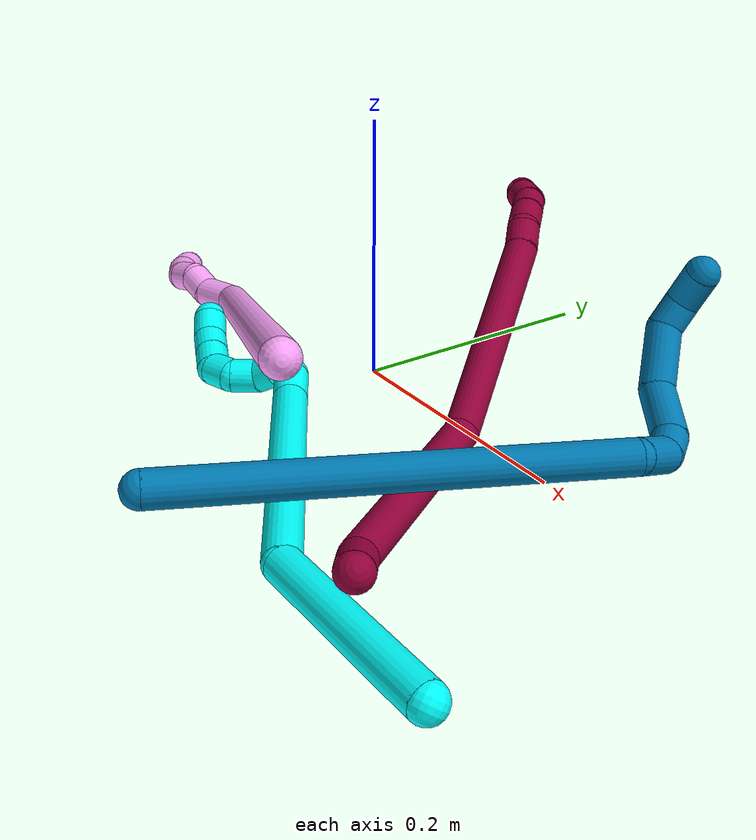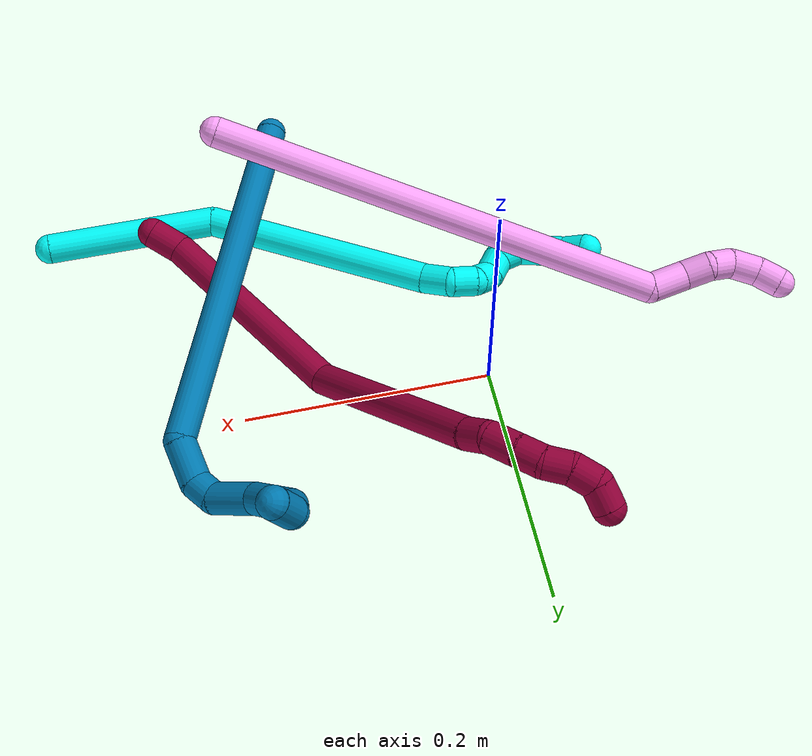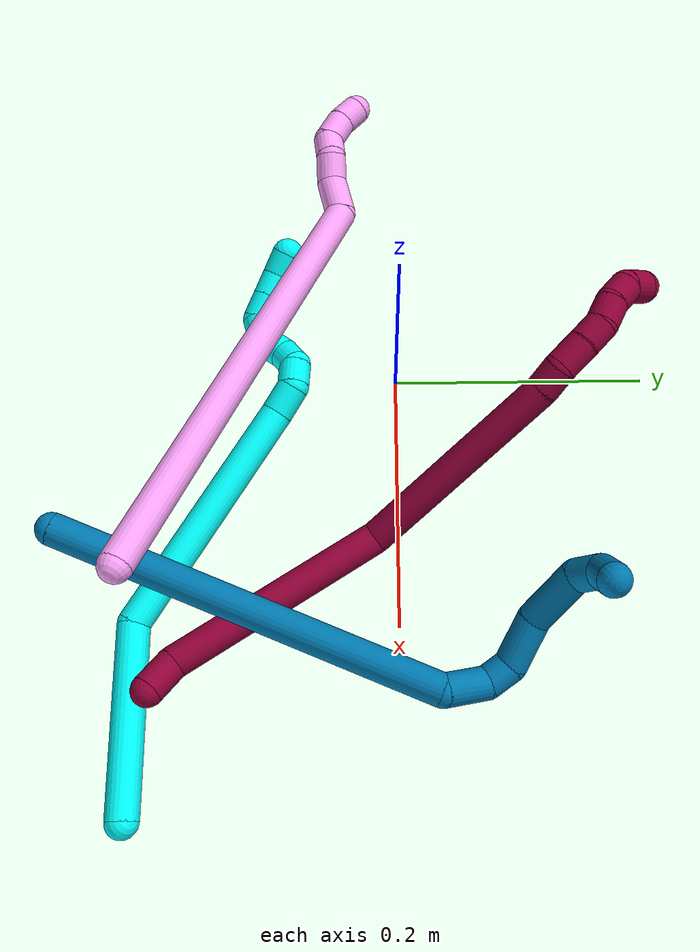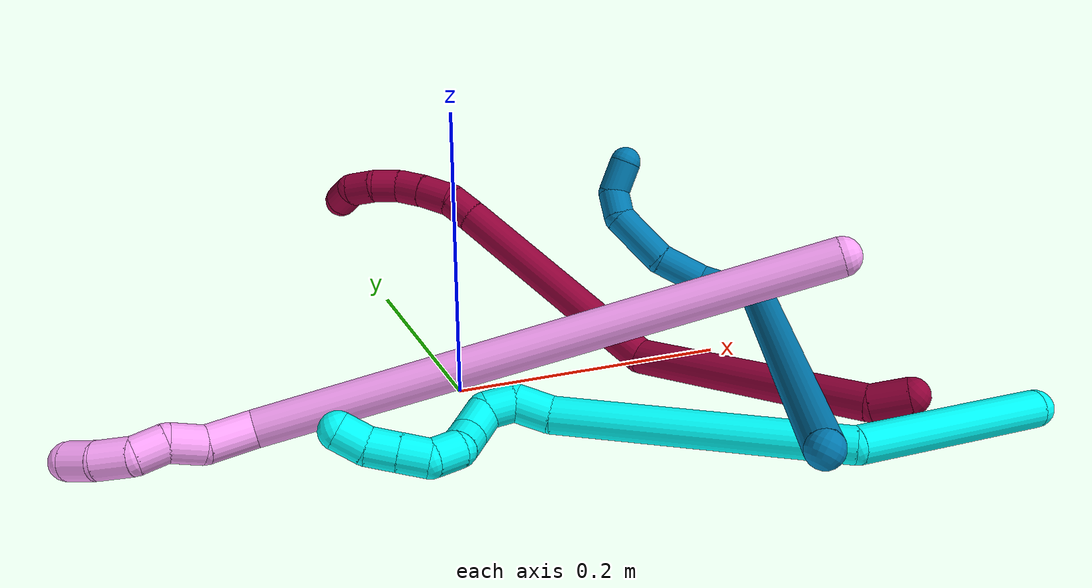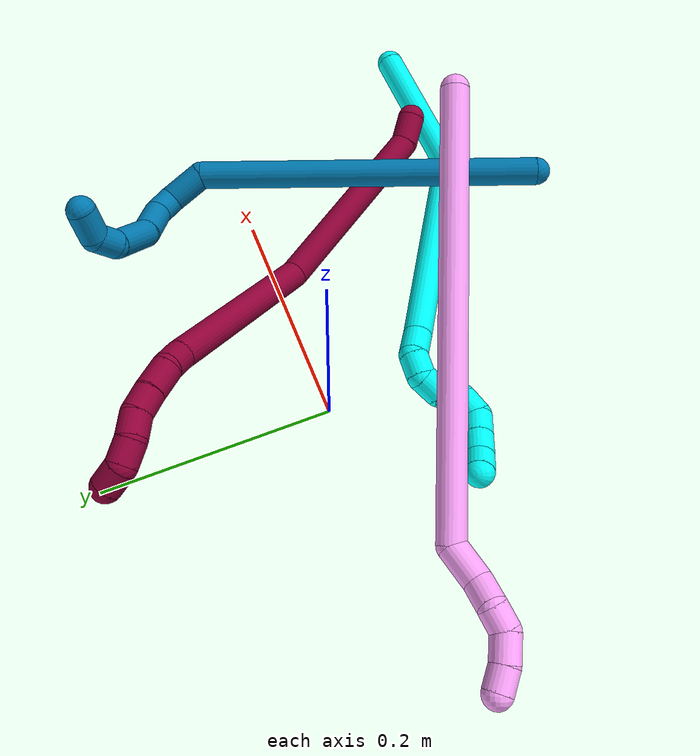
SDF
<sdf version="1.7">
 <world name="default">
  <model name="3">
   <static>0</static>
   <link name="3">
    <collision name="collision-cylinder-e_1_1_4">
     <pose>-0.062421 -0.028847 0.012825 1.15245 -1.10255 -0.760203</pose>
     <geometry><cylinder><radius>0.0125</radius><length>0.139901</length></cylinder></geometry>
     <surface>
      <friction><ode><mu>1.16</mu><mu2>1.16</mu2><slip1>0</slip1><slip2>0</slip2></ode></friction>
      <contact><ode><kp>1e+06</kp><kd>1</kd><max_vel>0</max_vel><min_depth>0.001</min_depth></ode></contact>
     </surface>
    </collision>
    <visual name="visual-cylinder-e_1_1_4">
     <pose>-0.062421 -0.028847 0.012825 1.15245 -1.10255 -0.760203</pose>
     <geometry><cylinder><radius>0.0125</radius><length>0.139901</length></cylinder></geometry>
     <material><ambient>0.003922 1 0.996078 1</ambient></material>
    </visual>
    <collision name="collision-cylinder-e_2_4_5">
     <pose>-0.207688 -0.055006 0.076305 -0.053031 -1.02139 0.029716</pose>
     <geometry><cylinder><radius>0.0125</radius><length>0.194284</length></cylinder></geometry>
     <surface>
      <friction><ode><mu>1.16</mu><mu2>1.16</mu2><slip1>0</slip1><slip2>0</slip2></ode></friction>
      <contact><ode><kp>1e+06</kp><kd>1</kd><max_vel>0</max_vel><min_depth>0.001</min_depth></ode></contact>
     </surface>
    </collision>
    <visual name="visual-cylinder-e_2_4_5">
     <pose>-0.207688 -0.055006 0.076305 -0.053031 -1.02139 0.029716</pose>
     <geometry><cylinder><radius>0.0125</radius><length>0.194284</length></cylinder></geometry>
     <material><ambient>0.003922 1 0.996078 1</ambient></material>
    </visual>
    <collision name="collision-cylinder-e_3_5_6">
     <pose>-0.299492 -0.053366 0.135562 0.121323 -0.801953 -0.051486</pose>
     <geometry><cylinder><radius>0.0125</radius><length>0.024928</length></cylinder></geometry>
     <surface>
      <friction><ode><mu>1.16</mu><mu2>1.16</mu2><slip1>0</slip1><slip2>0</slip2></ode></friction>
      <contact><ode><kp>1e+06</kp><kd>1</kd><max_vel>0</max_vel><min_depth>0.001</min_depth></ode></contact>
     </surface>
    </collision>
    <visual name="visual-cylinder-e_3_5_6">
     <pose>-0.299492 -0.053366 0.135562 0.121323 -0.801953 -0.051486</pose>
     <geometry><cylinder><radius>0.0125</radius><length>0.024928</length></cylinder></geometry>
     <material><ambient>0.003922 1 0.996078 1</ambient></material>
    </visual>
    <collision name="collision-cylinder-e_4_6_7">
     <pose>-0.318025 -0.057337 0.145387 1.17469 -1.25138 -0.89667</pose>
     <geometry><cylinder><radius>0.0125</radius><length>0.020171</length></cylinder></geometry>
     <surface>
      <friction><ode><mu>1.16</mu><mu2>1.16</mu2><slip1>0</slip1><slip2>0</slip2></ode></friction>
      <contact><ode><kp>1e+06</kp><kd>1</kd><max_vel>0</max_vel><min_depth>0.001</min_depth></ode></contact>
     </surface>
    </collision>
    <visual name="visual-cylinder-e_4_6_7">
     <pose>-0.318025 -0.057337 0.145387 1.17469 -1.25138 -0.89667</pose>
     <geometry><cylinder><radius>0.0125</radius><length>0.020171</length></cylinder></geometry>
     <material><ambient>0.003922 1 0.996078 1</ambient></material>
    </visual>
    <collision name="collision-cylinder-e_5_7_8">
     <pose>-0.335168 -0.064282 0.141112 2.50968 -0.837928 -1.87512</pose>
     <geometry><cylinder><radius>0.0125</radius><length>0.020364</length></cylinder></geometry>
     <surface>
      <friction><ode><mu>1.16</mu><mu2>1.16</mu2><slip1>0</slip1><slip2>0</slip2></ode></friction>
      <contact><ode><kp>1e+06</kp><kd>1</kd><max_vel>0</max_vel><min_depth>0.001</min_depth></ode></contact>
     </surface>
    </collision>
    <visual name="visual-cylinder-e_5_7_8">
     <pose>-0.335168 -0.064282 0.141112 2.50968 -0.837928 -1.87512</pose>
     <geometry><cylinder><radius>0.0125</radius><length>0.020364</length></cylinder></geometry>
     <material><ambient>0.003922 1 0.996078 1</ambient></material>
    </visual>
    <collision name="collision-cylinder-e_6_8_9">
     <pose>-0.346434 -0.076746 0.131467 2.02764 -0.374667 -0.590956</pose>
     <geometry><cylinder><radius>0.0125</radius><length>0.020211</length></cylinder></geometry>
     <surface>
      <friction><ode><mu>1.16</mu><mu2>1.16</mu2><slip1>0</slip1><slip2>0</slip2></ode></friction>
      <contact><ode><kp>1e+06</kp><kd>1</kd><max_vel>0</max_vel><min_depth>0.001</min_depth></ode></contact>
     </surface>
    </collision>
    <visual name="visual-cylinder-e_6_8_9">
     <pose>-0.346434 -0.076746 0.131467 2.02764 -0.374667 -0.590956</pose>
     <geometry><cylinder><radius>0.0125</radius><length>0.020211</length></cylinder></geometry>
     <material><ambient>0.003922 1 0.996078 1</ambient></material>
    </visual>
    <collision name="collision-cylinder-e_7_9_10">
     <pose>-0.358281 -0.091019 0.127187 1.59338 -0.949415 -0.967899</pose>
     <geometry><cylinder><radius>0.0125</radius><length>0.020043</length></cylinder></geometry>
     <surface>
      <friction><ode><mu>1.16</mu><mu2>1.16</mu2><slip1>0</slip1><slip2>0</slip2></ode></friction>
      <contact><ode><kp>1e+06</kp><kd>1</kd><max_vel>0</max_vel><min_depth>0.001</min_depth></ode></contact>
     </surface>
    </collision>
    <visual name="visual-cylinder-e_7_9_10">
     <pose>-0.358281 -0.091019 0.127187 1.59338 -0.949415 -0.967899</pose>
     <geometry><cylinder><radius>0.0125</radius><length>0.020043</length></cylinder></geometry>
     <material><ambient>0.003922 1 0.996078 1</ambient></material>
    </visual>
    <collision name="collision-cylinder-e_8_10_11">
     <pose>-0.374458 -0.09866 0.132789 0.305615 -0.92804 -0.153848</pose>
     <geometry><cylinder><radius>0.0125</radius><length>0.02006</length></cylinder></geometry>
     <surface>
      <friction><ode><mu>1.16</mu><mu2>1.16</mu2><slip1>0</slip1><slip2>0</slip2></ode></friction>
      <contact><ode><kp>1e+06</kp><kd>1</kd><max_vel>0</max_vel><min_depth>0.001</min_depth></ode></contact>
     </surface>
    </collision>
    <visual name="visual-cylinder-e_8_10_11">
     <pose>-0.374458 -0.09866 0.132789 0.305615 -0.92804 -0.153848</pose>
     <geometry><cylinder><radius>0.0125</radius><length>0.02006</length></cylinder></geometry>
     <material><ambient>0.003922 1 0.996078 1</ambient></material>
    </visual>
    <collision name="collision-cylinder-e_9_11_12">
     <pose>-0.390473 -0.10235 0.144262 0.316706 -0.923266 -0.158554</pose>
     <geometry><cylinder><radius>0.0125</radius><length>0.020027</length></cylinder></geometry>
     <surface>
      <friction><ode><mu>1.16</mu><mu2>1.16</mu2><slip1>0</slip1><slip2>0</slip2></ode></friction>
      <contact><ode><kp>1e+06</kp><kd>1</kd><max_vel>0</max_vel><min_depth>0.001</min_depth></ode></contact>
     </surface>
    </collision>
    <visual name="visual-cylinder-e_9_11_12">
     <pose>-0.390473 -0.10235 0.144262 0.316706 -0.923266 -0.158554</pose>
     <geometry><cylinder><radius>0.0125</radius><length>0.020027</length></cylinder></geometry>
     <material><ambient>0.003922 1 0.996078 1</ambient></material>
    </visual>
    <collision name="collision-cylinder-e_10_12_2">
     <pose>-0.404326 -0.106809 0.157687 0.323623 -0.626433 -0.10564</pose>
     <geometry><cylinder><radius>0.0125</radius><length>0.02001</length></cylinder></geometry>
     <surface>
      <friction><ode><mu>1.16</mu><mu2>1.16</mu2><slip1>0</slip1><slip2>0</slip2></ode></friction>
      <contact><ode><kp>1e+06</kp><kd>1</kd><max_vel>0</max_vel><min_depth>0.001</min_depth></ode></contact>
     </surface>
    </collision>
    <visual name="visual-cylinder-e_10_12_2">
     <pose>-0.404326 -0.106809 0.157687 0.323623 -0.626433 -0.10564</pose>
     <geometry><cylinder><radius>0.0125</radius><length>0.02001</length></cylinder></geometry>
     <material><ambient>0.003922 1 0.996078 1</ambient></material>
    </visual>
    <collision name="collision-sphere-2">
     <pose>-0.410191 -0.109387 0.165372 0 -0 0</pose>
     <geometry><sphere><radius>0.0125</radius></sphere></geometry>
     <surface>
      <friction><ode><mu>1.16</mu><mu2>1.16</mu2><slip1>0</slip1><slip2>0</slip2></ode></friction>
      <contact><ode><kp>1e+06</kp><kd>1</kd><max_vel>0</max_vel><min_depth>0.001</min_depth></ode></contact>
     </surface>
    </collision>
    <visual name="visual-sphere-2">
     <pose>-0.410191 -0.109387 0.165372 0 -0 0</pose>
     <geometry><sphere><radius>0.0125</radius></sphere></geometry>
     <material><ambient>0.003922 1 0.996078 1</ambient></material>
    </visual>
    <collision name="collision-sphere-12">
     <pose>-0.39846 -0.104232 0.150002 0 -0 0</pose>
     <geometry><sphere><radius>0.0125</radius></sphere></geometry>
     <surface>
      <friction><ode><mu>1.16</mu><mu2>1.16</mu2><slip1>0</slip1><slip2>0</slip2></ode></friction>
      <contact><ode><kp>1e+06</kp><kd>1</kd><max_vel>0</max_vel><min_depth>0.001</min_depth></ode></contact>
     </surface>
    </collision>
    <visual name="visual-sphere-12">
     <pose>-0.39846 -0.104232 0.150002 0 -0 0</pose>
     <geometry><sphere><radius>0.0125</radius></sphere></geometry>
     <material><ambient>0.003922 1 0.996078 1</ambient></material>
    </visual>
    <collision name="collision-sphere-11">
     <pose>-0.382487 -0.100469 0.138522 0 -0 0</pose>
     <geometry><sphere><radius>0.0125</radius></sphere></geometry>
     <surface>
      <friction><ode><mu>1.16</mu><mu2>1.16</mu2><slip1>0</slip1><slip2>0</slip2></ode></friction>
      <contact><ode><kp>1e+06</kp><kd>1</kd><max_vel>0</max_vel><min_depth>0.001</min_depth></ode></contact>
     </surface>
    </collision>
    <visual name="visual-sphere-11">
     <pose>-0.382487 -0.100469 0.138522 0 -0 0</pose>
     <geometry><sphere><radius>0.0125</radius></sphere></geometry>
     <material><ambient>0.003922 1 0.996078 1</ambient></material>
    </visual>
    <collision name="collision-sphere-10">
     <pose>-0.366429 -0.096851 0.127055 0 -0 0</pose>
     <geometry><sphere><radius>0.0125</radius></sphere></geometry>
     <surface>
      <friction><ode><mu>1.16</mu><mu2>1.16</mu2><slip1>0</slip1><slip2>0</slip2></ode></friction>
      <contact><ode><kp>1e+06</kp><kd>1</kd><max_vel>0</max_vel><min_depth>0.001</min_depth></ode></contact>
     </surface>
    </collision>
    <visual name="visual-sphere-10">
     <pose>-0.366429 -0.096851 0.127055 0 -0 0</pose>
     <geometry><sphere><radius>0.0125</radius></sphere></geometry>
     <material><ambient>0.003922 1 0.996078 1</ambient></material>
    </visual>
    <collision name="collision-sphere-9">
     <pose>-0.350133 -0.085186 0.127318 0 -0 0</pose>
     <geometry><sphere><radius>0.0125</radius></sphere></geometry>
     <surface>
      <friction><ode><mu>1.16</mu><mu2>1.16</mu2><slip1>0</slip1><slip2>0</slip2></ode></friction>
      <contact><ode><kp>1e+06</kp><kd>1</kd><max_vel>0</max_vel><min_depth>0.001</min_depth></ode></contact>
     </surface>
    </collision>
    <visual name="visual-sphere-9">
     <pose>-0.350133 -0.085186 0.127318 0 -0 0</pose>
     <geometry><sphere><radius>0.0125</radius></sphere></geometry>
     <material><ambient>0.003922 1 0.996078 1</ambient></material>
    </visual>
    <collision name="collision-sphere-4">
     <pose>-0.124842 -0.057695 0.025651 0 -0 0</pose>
     <geometry><sphere><radius>0.0125</radius></sphere></geometry>
     <surface>
      <friction><ode><mu>1.16</mu><mu2>1.16</mu2><slip1>0</slip1><slip2>0</slip2></ode></friction>
      <contact><ode><kp>1e+06</kp><kd>1</kd><max_vel>0</max_vel><min_depth>0.001</min_depth></ode></contact>
     </surface>
    </collision>
    <visual name="visual-sphere-4">
     <pose>-0.124842 -0.057695 0.025651 0 -0 0</pose>
     <geometry><sphere><radius>0.0125</radius></sphere></geometry>
     <material><ambient>0.003922 1 0.996078 1</ambient></material>
    </visual>
    <collision name="collision-sphere-1">
     <geometry><sphere><radius>0.0125</radius></sphere></geometry>
     <surface>
      <friction><ode><mu>1.16</mu><mu2>1.16</mu2><slip1>0</slip1><slip2>0</slip2></ode></friction>
      <contact><ode><kp>1e+06</kp><kd>1</kd><max_vel>0</max_vel><min_depth>0.001</min_depth></ode></contact>
     </surface>
    </collision>
    <visual name="visual-sphere-1">
     <geometry><sphere><radius>0.0125</radius></sphere></geometry>
     <material><ambient>0.003922 1 0.996078 1</ambient></material>
    </visual>
    <collision name="collision-sphere-8">
     <pose>-0.342736 -0.068306 0.135615 0 -0 0</pose>
     <geometry><sphere><radius>0.0125</radius></sphere></geometry>
     <surface>
      <friction><ode><mu>1.16</mu><mu2>1.16</mu2><slip1>0</slip1><slip2>0</slip2></ode></friction>
      <contact><ode><kp>1e+06</kp><kd>1</kd><max_vel>0</max_vel><min_depth>0.001</min_depth></ode></contact>
     </surface>
    </collision>
    <visual name="visual-sphere-8">
     <pose>-0.342736 -0.068306 0.135615 0 -0 0</pose>
     <geometry><sphere><radius>0.0125</radius></sphere></geometry>
     <material><ambient>0.003922 1 0.996078 1</ambient></material>
    </visual>
    <collision name="collision-sphere-5">
     <pose>-0.290534 -0.052317 0.12696 0 -0 0</pose>
     <geometry><sphere><radius>0.0125</radius></sphere></geometry>
     <surface>
      <friction><ode><mu>1.16</mu><mu2>1.16</mu2><slip1>0</slip1><slip2>0</slip2></ode></friction>
      <contact><ode><kp>1e+06</kp><kd>1</kd><max_vel>0</max_vel><min_depth>0.001</min_depth></ode></contact>
     </surface>
    </collision>
    <visual name="visual-sphere-5">
     <pose>-0.290534 -0.052317 0.12696 0 -0 0</pose>
     <geometry><sphere><radius>0.0125</radius></sphere></geometry>
     <material><ambient>0.003922 1 0.996078 1</ambient></material>
    </visual>
    <collision name="collision-sphere-6">
     <pose>-0.30845 -0.054415 0.144165 0 -0 0</pose>
     <geometry><sphere><radius>0.0125</radius></sphere></geometry>
     <surface>
      <friction><ode><mu>1.16</mu><mu2>1.16</mu2><slip1>0</slip1><slip2>0</slip2></ode></friction>
      <contact><ode><kp>1e+06</kp><kd>1</kd><max_vel>0</max_vel><min_depth>0.001</min_depth></ode></contact>
     </surface>
    </collision>
    <visual name="visual-sphere-6">
     <pose>-0.30845 -0.054415 0.144165 0 -0 0</pose>
     <geometry><sphere><radius>0.0125</radius></sphere></geometry>
     <material><ambient>0.003922 1 0.996078 1</ambient></material>
    </visual>
    <collision name="collision-sphere-7">
     <pose>-0.3276 -0.060258 0.146608 0 -0 0</pose>
     <geometry><sphere><radius>0.0125</radius></sphere></geometry>
     <surface>
      <friction><ode><mu>1.16</mu><mu2>1.16</mu2><slip1>0</slip1><slip2>0</slip2></ode></friction>
      <contact><ode><kp>1e+06</kp><kd>1</kd><max_vel>0</max_vel><min_depth>0.001</min_depth></ode></contact>
     </surface>
    </collision>
    <visual name="visual-sphere-7">
     <pose>-0.3276 -0.060258 0.146608 0 -0 0</pose>
     <geometry><sphere><radius>0.0125</radius></sphere></geometry>
     <material><ambient>0.003922 1 0.996078 1</ambient></material>
    </visual>
    <inertial>
     <pose>-0.21479 -0.05612 0.079439 0 -0 0</pose>
     <mass>0.5</mass>
     <inertia>
      <ixx>0.000307</ixx>
      <ixy>0</ixy>
      <ixz>0</ixz>
      <iyy>0.000753</iyy>
      <iyz>0</iyz>
      <izz>0.000842</izz>
     </inertia>
    </inertial>
   </link>
   <pose>0.336557 -0.197663 0.012433 -0.631217 -0.41342 -0.224075</pose>
  </model>
  <model name="4">
   <static>0</static>
   <link name="4">
    <collision name="collision-cylinder-e_1_1_4">
     <pose>-0.001485 0.001238 -0.189655 -3.13506 -0.007828 1.75114</pose>
     <geometry><cylinder><radius>0.0125</radius><length>0.37933</length></cylinder></geometry>
     <surface>
      <friction><ode><mu>1.16</mu><mu2>1.16</mu2><slip1>0</slip1><slip2>0</slip2></ode></friction>
      <contact><ode><kp>1e+06</kp><kd>1</kd><max_vel>0</max_vel><min_depth>0.001</min_depth></ode></contact>
     </surface>
    </collision>
    <visual name="visual-cylinder-e_1_1_4">
     <pose>-0.001485 0.001238 -0.189655 -3.13506 -0.007828 1.75114</pose>
     <geometry><cylinder><radius>0.0125</radius><length>0.37933</length></cylinder></geometry>
     <material><ambient>1 0.65098 0.996078 1</ambient></material>
    </visual>
    <collision name="collision-cylinder-e_2_4_5">
     <pose>-0.009523 -0.005467 -0.392072 2.58484 -0.411118 -1.26057</pose>
     <geometry><cylinder><radius>0.0125</radius><length>0.032798</length></cylinder></geometry>
     <surface>
      <friction><ode><mu>1.16</mu><mu2>1.16</mu2><slip1>0</slip1><slip2>0</slip2></ode></friction>
      <contact><ode><kp>1e+06</kp><kd>1</kd><max_vel>0</max_vel><min_depth>0.001</min_depth></ode></contact>
     </surface>
    </collision>
    <visual name="visual-cylinder-e_2_4_5">
     <pose>-0.009523 -0.005467 -0.392072 2.58484 -0.411118 -1.26057</pose>
     <geometry><cylinder><radius>0.0125</radius><length>0.032798</length></cylinder></geometry>
     <material><ambient>1 0.65098 0.996078 1</ambient></material>
    </visual>
    <collision name="collision-cylinder-e_3_5_6">
     <pose>-0.023417 -0.015568 -0.413431 2.89573 -0.691695 -2.48094</pose>
     <geometry><cylinder><radius>0.0125</radius><length>0.023016</length></cylinder></geometry>
     <surface>
      <friction><ode><mu>1.16</mu><mu2>1.16</mu2><slip1>0</slip1><slip2>0</slip2></ode></friction>
      <contact><ode><kp>1e+06</kp><kd>1</kd><max_vel>0</max_vel><min_depth>0.001</min_depth></ode></contact>
     </surface>
    </collision>
    <visual name="visual-cylinder-e_3_5_6">
     <pose>-0.023417 -0.015568 -0.413431 2.89573 -0.691695 -2.48094</pose>
     <geometry><cylinder><radius>0.0125</radius><length>0.023016</length></cylinder></geometry>
     <material><ambient>1 0.65098 0.996078 1</ambient></material>
    </visual>
    <collision name="collision-cylinder-e_4_6_7">
     <pose>-0.033166 -0.022092 -0.430801 2.67971 -0.241033 -0.951196</pose>
     <geometry><cylinder><radius>0.0125</radius><length>0.020184</length></cylinder></geometry>
     <surface>
      <friction><ode><mu>1.16</mu><mu2>1.16</mu2><slip1>0</slip1><slip2>0</slip2></ode></friction>
      <contact><ode><kp>1e+06</kp><kd>1</kd><max_vel>0</max_vel><min_depth>0.001</min_depth></ode></contact>
     </surface>
    </collision>
    <visual name="visual-cylinder-e_4_6_7">
     <pose>-0.033166 -0.022092 -0.430801 2.67971 -0.241033 -0.951196</pose>
     <geometry><cylinder><radius>0.0125</radius><length>0.020184</length></cylinder></geometry>
     <material><ambient>1 0.65098 0.996078 1</ambient></material>
    </visual>
    <collision name="collision-cylinder-e_5_7_8">
     <pose>-0.037095 -0.025177 -0.45143 -3.03385 -0.126783 1.7332</pose>
     <geometry><cylinder><radius>0.0125</radius><length>0.024043</length></cylinder></geometry>
     <surface>
      <friction><ode><mu>1.16</mu><mu2>1.16</mu2><slip1>0</slip1><slip2>0</slip2></ode></friction>
      <contact><ode><kp>1e+06</kp><kd>1</kd><max_vel>0</max_vel><min_depth>0.001</min_depth></ode></contact>
     </surface>
    </collision>
    <visual name="visual-cylinder-e_5_7_8">
     <pose>-0.037095 -0.025177 -0.45143 -3.03385 -0.126783 1.7332</pose>
     <geometry><cylinder><radius>0.0125</radius><length>0.024043</length></cylinder></geometry>
     <material><ambient>1 0.65098 0.996078 1</ambient></material>
    </visual>
    <collision name="collision-cylinder-e_6_8_2">
     <pose>-0.038895 -0.020628 -0.473065 -2.81919 -0.027099 0.166275</pose>
     <geometry><cylinder><radius>0.0125</radius><length>0.02063</length></cylinder></geometry>
     <surface>
      <friction><ode><mu>1.16</mu><mu2>1.16</mu2><slip1>0</slip1><slip2>0</slip2></ode></friction>
      <contact><ode><kp>1e+06</kp><kd>1</kd><max_vel>0</max_vel><min_depth>0.001</min_depth></ode></contact>
     </surface>
    </collision>
    <visual name="visual-cylinder-e_6_8_2">
     <pose>-0.038895 -0.020628 -0.473065 -2.81919 -0.027099 0.166275</pose>
     <geometry><cylinder><radius>0.0125</radius><length>0.02063</length></cylinder></geometry>
     <material><ambient>1 0.65098 0.996078 1</ambient></material>
    </visual>
    <collision name="collision-sphere-2">
     <pose>-0.039174 -0.017361 -0.482845 0 -0 0</pose>
     <geometry><sphere><radius>0.0125</radius></sphere></geometry>
     <surface>
      <friction><ode><mu>1.16</mu><mu2>1.16</mu2><slip1>0</slip1><slip2>0</slip2></ode></friction>
      <contact><ode><kp>1e+06</kp><kd>1</kd><max_vel>0</max_vel><min_depth>0.001</min_depth></ode></contact>
     </surface>
    </collision>
    <visual name="visual-sphere-2">
     <pose>-0.039174 -0.017361 -0.482845 0 -0 0</pose>
     <geometry><sphere><radius>0.0125</radius></sphere></geometry>
     <material><ambient>1 0.65098 0.996078 1</ambient></material>
    </visual>
    <collision name="collision-sphere-4">
     <pose>-0.002969 0.002477 -0.37931 0 -0 0</pose>
     <geometry><sphere><radius>0.0125</radius></sphere></geometry>
     <surface>
      <friction><ode><mu>1.16</mu><mu2>1.16</mu2><slip1>0</slip1><slip2>0</slip2></ode></friction>
      <contact><ode><kp>1e+06</kp><kd>1</kd><max_vel>0</max_vel><min_depth>0.001</min_depth></ode></contact>
     </surface>
    </collision>
    <visual name="visual-sphere-4">
     <pose>-0.002969 0.002477 -0.37931 0 -0 0</pose>
     <geometry><sphere><radius>0.0125</radius></sphere></geometry>
     <material><ambient>1 0.65098 0.996078 1</ambient></material>
    </visual>
    <collision name="collision-sphere-1">
     <geometry><sphere><radius>0.0125</radius></sphere></geometry>
     <surface>
      <friction><ode><mu>1.16</mu><mu2>1.16</mu2><slip1>0</slip1><slip2>0</slip2></ode></friction>
      <contact><ode><kp>1e+06</kp><kd>1</kd><max_vel>0</max_vel><min_depth>0.001</min_depth></ode></contact>
     </surface>
    </collision>
    <visual name="visual-sphere-1">
     <geometry><sphere><radius>0.0125</radius></sphere></geometry>
     <material><ambient>1 0.65098 0.996078 1</ambient></material>
    </visual>
    <collision name="collision-sphere-8">
     <pose>-0.038615 -0.023895 -0.463285 0 -0 0</pose>
     <geometry><sphere><radius>0.0125</radius></sphere></geometry>
     <surface>
      <friction><ode><mu>1.16</mu><mu2>1.16</mu2><slip1>0</slip1><slip2>0</slip2></ode></friction>
      <contact><ode><kp>1e+06</kp><kd>1</kd><max_vel>0</max_vel><min_depth>0.001</min_depth></ode></contact>
     </surface>
    </collision>
    <visual name="visual-sphere-8">
     <pose>-0.038615 -0.023895 -0.463285 0 -0 0</pose>
     <geometry><sphere><radius>0.0125</radius></sphere></geometry>
     <material><ambient>1 0.65098 0.996078 1</ambient></material>
    </visual>
    <collision name="collision-sphere-5">
     <pose>-0.016077 -0.013411 -0.404834 0 -0 0</pose>
     <geometry><sphere><radius>0.0125</radius></sphere></geometry>
     <surface>
      <friction><ode><mu>1.16</mu><mu2>1.16</mu2><slip1>0</slip1><slip2>0</slip2></ode></friction>
      <contact><ode><kp>1e+06</kp><kd>1</kd><max_vel>0</max_vel><min_depth>0.001</min_depth></ode></contact>
     </surface>
    </collision>
    <visual name="visual-sphere-5">
     <pose>-0.016077 -0.013411 -0.404834 0 -0 0</pose>
     <geometry><sphere><radius>0.0125</radius></sphere></geometry>
     <material><ambient>1 0.65098 0.996078 1</ambient></material>
    </visual>
    <collision name="collision-sphere-6">
     <pose>-0.030757 -0.017725 -0.422027 0 -0 0</pose>
     <geometry><sphere><radius>0.0125</radius></sphere></geometry>
     <surface>
      <friction><ode><mu>1.16</mu><mu2>1.16</mu2><slip1>0</slip1><slip2>0</slip2></ode></friction>
      <contact><ode><kp>1e+06</kp><kd>1</kd><max_vel>0</max_vel><min_depth>0.001</min_depth></ode></contact>
     </surface>
    </collision>
    <visual name="visual-sphere-6">
     <pose>-0.030757 -0.017725 -0.422027 0 -0 0</pose>
     <geometry><sphere><radius>0.0125</radius></sphere></geometry>
     <material><ambient>1 0.65098 0.996078 1</ambient></material>
    </visual>
    <collision name="collision-sphere-7">
     <pose>-0.035575 -0.02646 -0.439574 0 -0 0</pose>
     <geometry><sphere><radius>0.0125</radius></sphere></geometry>
     <surface>
      <friction><ode><mu>1.16</mu><mu2>1.16</mu2><slip1>0</slip1><slip2>0</slip2></ode></friction>
      <contact><ode><kp>1e+06</kp><kd>1</kd><max_vel>0</max_vel><min_depth>0.001</min_depth></ode></contact>
     </surface>
    </collision>
    <visual name="visual-sphere-7">
     <pose>-0.035575 -0.02646 -0.439574 0 -0 0</pose>
     <geometry><sphere><radius>0.0125</radius></sphere></geometry>
     <material><ambient>1 0.65098 0.996078 1</ambient></material>
    </visual>
    <inertial>
     <pose>-0.007556 -0.003089 -0.247249 0 -0 0</pose>
     <mass>0.5</mass>
     <inertia>
      <ixx>0.003666</ixx>
      <ixy>0</ixy>
      <ixz>0</ixz>
      <iyy>0.005303</iyy>
      <iyz>0</iyz>
      <izz>-2.6e-05</izz>
     </inertia>
    </inertial>
   </link>
   <pose>0.182952 -0.186675 0.13498 0.811864 1.09427 0.467867</pose>
  </model>
  <model name="8">
   <static>0</static>
   <link name="8">
    <collision name="collision-cylinder-e_1_1_4">
     <pose>-0.005458 0.005488 0.011184 -0.456166 -0.412943 0.097162</pose>
     <geometry><cylinder><radius>0.0125</radius><length>0.027203</length></cylinder></geometry>
     <surface>
      <friction><ode><mu>1.16</mu><mu2>1.16</mu2><slip1>0</slip1><slip2>0</slip2></ode></friction>
      <contact><ode><kp>1e+06</kp><kd>1</kd><max_vel>0</max_vel><min_depth>0.001</min_depth></ode></contact>
     </surface>
    </collision>
    <visual name="visual-cylinder-e_1_1_4">
     <pose>-0.005458 0.005488 0.011184 -0.456166 -0.412943 0.097162</pose>
     <geometry><cylinder><radius>0.0125</radius><length>0.027203</length></cylinder></geometry>
     <material><ambient>0.584314 0 0.227451 1</ambient></material>
    </visual>
    <collision name="collision-cylinder-e_2_4_5">
     <pose>-0.072952 0.052062 0.069636 -0.715548 -0.780649 0.305248</pose>
     <geometry><cylinder><radius>0.0125</radius><length>0.176302</length></cylinder></geometry>
     <surface>
      <friction><ode><mu>1.16</mu><mu2>1.16</mu2><slip1>0</slip1><slip2>0</slip2></ode></friction>
      <contact><ode><kp>1e+06</kp><kd>1</kd><max_vel>0</max_vel><min_depth>0.001</min_depth></ode></contact>
     </surface>
    </collision>
    <visual name="visual-cylinder-e_2_4_5">
     <pose>-0.072952 0.052062 0.069636 -0.715548 -0.780649 0.305248</pose>
     <geometry><cylinder><radius>0.0125</radius><length>0.176302</length></cylinder></geometry>
     <material><ambient>0.584314 0 0.227451 1</ambient></material>
    </visual>
    <collision name="collision-cylinder-e_3_5_6">
     <pose>-0.185462 0.161341 0.126377 -1.43276 -0.632606 0.555216</pose>
     <geometry><cylinder><radius>0.0125</radius><length>0.170738</length></cylinder></geometry>
     <surface>
      <friction><ode><mu>1.16</mu><mu2>1.16</mu2><slip1>0</slip1><slip2>0</slip2></ode></friction>
      <contact><ode><kp>1e+06</kp><kd>1</kd><max_vel>0</max_vel><min_depth>0.001</min_depth></ode></contact>
     </surface>
    </collision>
    <visual name="visual-cylinder-e_3_5_6">
     <pose>-0.185462 0.161341 0.126377 -1.43276 -0.632606 0.555216</pose>
     <geometry><cylinder><radius>0.0125</radius><length>0.170738</length></cylinder></geometry>
     <material><ambient>0.584314 0 0.227451 1</ambient></material>
    </visual>
    <collision name="collision-cylinder-e_4_6_7">
     <pose>-0.240652 0.238705 0.137118 -1.43349 -0.471212 0.412401</pose>
     <geometry><cylinder><radius>0.0125</radius><length>0.020778</length></cylinder></geometry>
     <surface>
      <friction><ode><mu>1.16</mu><mu2>1.16</mu2><slip1>0</slip1><slip2>0</slip2></ode></friction>
      <contact><ode><kp>1e+06</kp><kd>1</kd><max_vel>0</max_vel><min_depth>0.001</min_depth></ode></contact>
     </surface>
    </collision>
    <visual name="visual-cylinder-e_4_6_7">
     <pose>-0.240652 0.238705 0.137118 -1.43349 -0.471212 0.412401</pose>
     <geometry><cylinder><radius>0.0125</radius><length>0.020778</length></cylinder></geometry>
     <material><ambient>0.584314 0 0.227451 1</ambient></material>
    </visual>
    <collision name="collision-cylinder-e_5_7_8">
     <pose>-0.252069 0.256565 0.143882 -1.00683 -0.577481 0.324314</pose>
     <geometry><cylinder><radius>0.0125</radius><length>0.024546</length></cylinder></geometry>
     <surface>
      <friction><ode><mu>1.16</mu><mu2>1.16</mu2><slip1>0</slip1><slip2>0</slip2></ode></friction>
      <contact><ode><kp>1e+06</kp><kd>1</kd><max_vel>0</max_vel><min_depth>0.001</min_depth></ode></contact>
     </surface>
    </collision>
    <visual name="visual-cylinder-e_5_7_8">
     <pose>-0.252069 0.256565 0.143882 -1.00683 -0.577481 0.324314</pose>
     <geometry><cylinder><radius>0.0125</radius><length>0.024546</length></cylinder></geometry>
     <material><ambient>0.584314 0 0.227451 1</ambient></material>
    </visual>
    <collision name="collision-cylinder-e_6_8_9">
     <pose>-0.264031 0.27206 0.154738 -0.903552 -0.54588 0.270014</pose>
     <geometry><cylinder><radius>0.0125</radius><length>0.02027</length></cylinder></geometry>
     <surface>
      <friction><ode><mu>1.16</mu><mu2>1.16</mu2><slip1>0</slip1><slip2>0</slip2></ode></friction>
      <contact><ode><kp>1e+06</kp><kd>1</kd><max_vel>0</max_vel><min_depth>0.001</min_depth></ode></contact>
     </surface>
    </collision>
    <visual name="visual-cylinder-e_6_8_9">
     <pose>-0.264031 0.27206 0.154738 -0.903552 -0.54588 0.270014</pose>
     <geometry><cylinder><radius>0.0125</radius><length>0.02027</length></cylinder></geometry>
     <material><ambient>0.584314 0 0.227451 1</ambient></material>
    </visual>
    <collision name="collision-cylinder-e_7_9_10">
     <pose>-0.271747 0.285728 0.167008 -0.782161 -0.246889 0.102228</pose>
     <geometry><cylinder><radius>0.0125</radius><length>0.020088</length></cylinder></geometry>
     <surface>
      <friction><ode><mu>1.16</mu><mu2>1.16</mu2><slip1>0</slip1><slip2>0</slip2></ode></friction>
      <contact><ode><kp>1e+06</kp><kd>1</kd><max_vel>0</max_vel><min_depth>0.001</min_depth></ode></contact>
     </surface>
    </collision>
    <visual name="visual-cylinder-e_7_9_10">
     <pose>-0.271747 0.285728 0.167008 -0.782161 -0.246889 0.102228</pose>
     <geometry><cylinder><radius>0.0125</radius><length>0.020088</length></cylinder></geometry>
     <material><ambient>0.584314 0 0.227451 1</ambient></material>
    </visual>
    <collision name="collision-cylinder-e_8_10_11">
     <pose>-0.278654 0.297173 0.181638 -0.535386 -0.460428 0.128387</pose>
     <geometry><cylinder><radius>0.0125</radius><length>0.020043</length></cylinder></geometry>
     <surface>
      <friction><ode><mu>1.16</mu><mu2>1.16</mu2><slip1>0</slip1><slip2>0</slip2></ode></friction>
      <contact><ode><kp>1e+06</kp><kd>1</kd><max_vel>0</max_vel><min_depth>0.001</min_depth></ode></contact>
     </surface>
    </collision>
    <visual name="visual-cylinder-e_8_10_11">
     <pose>-0.278654 0.297173 0.181638 -0.535386 -0.460428 0.128387</pose>
     <geometry><cylinder><radius>0.0125</radius><length>0.020043</length></cylinder></geometry>
     <material><ambient>0.584314 0 0.227451 1</ambient></material>
    </visual>
    <collision name="collision-cylinder-e_9_11_2">
     <pose>-0.289773 0.300749 0.196769 0.134706 -0.728097 -0.051394</pose>
     <geometry><cylinder><radius>0.0125</radius><length>0.020032</length></cylinder></geometry>
     <surface>
      <friction><ode><mu>1.16</mu><mu2>1.16</mu2><slip1>0</slip1><slip2>0</slip2></ode></friction>
      <contact><ode><kp>1e+06</kp><kd>1</kd><max_vel>0</max_vel><min_depth>0.001</min_depth></ode></contact>
     </surface>
    </collision>
    <visual name="visual-cylinder-e_9_11_2">
     <pose>-0.289773 0.300749 0.196769 0.134706 -0.728097 -0.051394</pose>
     <geometry><cylinder><radius>0.0125</radius><length>0.020032</length></cylinder></geometry>
     <material><ambient>0.584314 0 0.227451 1</ambient></material>
    </visual>
    <collision name="collision-sphere-2">
     <pose>-0.296438 0.299745 0.204178 0 -0 0</pose>
     <geometry><sphere><radius>0.0125</radius></sphere></geometry>
     <surface>
      <friction><ode><mu>1.16</mu><mu2>1.16</mu2><slip1>0</slip1><slip2>0</slip2></ode></friction>
      <contact><ode><kp>1e+06</kp><kd>1</kd><max_vel>0</max_vel><min_depth>0.001</min_depth></ode></contact>
     </surface>
    </collision>
    <visual name="visual-sphere-2">
     <pose>-0.296438 0.299745 0.204178 0 -0 0</pose>
     <geometry><sphere><radius>0.0125</radius></sphere></geometry>
     <material><ambient>0.584314 0 0.227451 1</ambient></material>
    </visual>
    <collision name="collision-sphere-11">
     <pose>-0.283107 0.301753 0.18936 0 -0 0</pose>
     <geometry><sphere><radius>0.0125</radius></sphere></geometry>
     <surface>
      <friction><ode><mu>1.16</mu><mu2>1.16</mu2><slip1>0</slip1><slip2>0</slip2></ode></friction>
      <contact><ode><kp>1e+06</kp><kd>1</kd><max_vel>0</max_vel><min_depth>0.001</min_depth></ode></contact>
     </surface>
    </collision>
    <visual name="visual-sphere-11">
     <pose>-0.283107 0.301753 0.18936 0 -0 0</pose>
     <geometry><sphere><radius>0.0125</radius></sphere></geometry>
     <material><ambient>0.584314 0 0.227451 1</ambient></material>
    </visual>
    <collision name="collision-sphere-10">
     <pose>-0.274201 0.292593 0.173917 0 -0 0</pose>
     <geometry><sphere><radius>0.0125</radius></sphere></geometry>
     <surface>
      <friction><ode><mu>1.16</mu><mu2>1.16</mu2><slip1>0</slip1><slip2>0</slip2></ode></friction>
      <contact><ode><kp>1e+06</kp><kd>1</kd><max_vel>0</max_vel><min_depth>0.001</min_depth></ode></contact>
     </surface>
    </collision>
    <visual name="visual-sphere-10">
     <pose>-0.274201 0.292593 0.173917 0 -0 0</pose>
     <geometry><sphere><radius>0.0125</radius></sphere></geometry>
     <material><ambient>0.584314 0 0.227451 1</ambient></material>
    </visual>
    <collision name="collision-sphere-9">
     <pose>-0.269292 0.278864 0.160099 0 -0 0</pose>
     <geometry><sphere><radius>0.0125</radius></sphere></geometry>
     <surface>
      <friction><ode><mu>1.16</mu><mu2>1.16</mu2><slip1>0</slip1><slip2>0</slip2></ode></friction>
      <contact><ode><kp>1e+06</kp><kd>1</kd><max_vel>0</max_vel><min_depth>0.001</min_depth></ode></contact>
     </surface>
    </collision>
    <visual name="visual-sphere-9">
     <pose>-0.269292 0.278864 0.160099 0 -0 0</pose>
     <geometry><sphere><radius>0.0125</radius></sphere></geometry>
     <material><ambient>0.584314 0 0.227451 1</ambient></material>
    </visual>
    <collision name="collision-sphere-4">
     <pose>-0.010917 0.010976 0.022369 0 -0 0</pose>
     <geometry><sphere><radius>0.0125</radius></sphere></geometry>
     <surface>
      <friction><ode><mu>1.16</mu><mu2>1.16</mu2><slip1>0</slip1><slip2>0</slip2></ode></friction>
      <contact><ode><kp>1e+06</kp><kd>1</kd><max_vel>0</max_vel><min_depth>0.001</min_depth></ode></contact>
     </surface>
    </collision>
    <visual name="visual-sphere-4">
     <pose>-0.010917 0.010976 0.022369 0 -0 0</pose>
     <geometry><sphere><radius>0.0125</radius></sphere></geometry>
     <material><ambient>0.584314 0 0.227451 1</ambient></material>
    </visual>
    <collision name="collision-sphere-1">
     <geometry><sphere><radius>0.0125</radius></sphere></geometry>
     <surface>
      <friction><ode><mu>1.16</mu><mu2>1.16</mu2><slip1>0</slip1><slip2>0</slip2></ode></friction>
      <contact><ode><kp>1e+06</kp><kd>1</kd><max_vel>0</max_vel><min_depth>0.001</min_depth></ode></contact>
     </surface>
    </collision>
    <visual name="visual-sphere-1">
     <geometry><sphere><radius>0.0125</radius></sphere></geometry>
     <material><ambient>0.584314 0 0.227451 1</ambient></material>
    </visual>
    <collision name="collision-sphere-8">
     <pose>-0.258769 0.265256 0.149378 0 -0 0</pose>
     <geometry><sphere><radius>0.0125</radius></sphere></geometry>
     <surface>
      <friction><ode><mu>1.16</mu><mu2>1.16</mu2><slip1>0</slip1><slip2>0</slip2></ode></friction>
      <contact><ode><kp>1e+06</kp><kd>1</kd><max_vel>0</max_vel><min_depth>0.001</min_depth></ode></contact>
     </surface>
    </collision>
    <visual name="visual-sphere-8">
     <pose>-0.258769 0.265256 0.149378 0 -0 0</pose>
     <geometry><sphere><radius>0.0125</radius></sphere></geometry>
     <material><ambient>0.584314 0 0.227451 1</ambient></material>
    </visual>
    <collision name="collision-sphere-5">
     <pose>-0.134988 0.093147 0.116903 0 -0 0</pose>
     <geometry><sphere><radius>0.0125</radius></sphere></geometry>
     <surface>
      <friction><ode><mu>1.16</mu><mu2>1.16</mu2><slip1>0</slip1><slip2>0</slip2></ode></friction>
      <contact><ode><kp>1e+06</kp><kd>1</kd><max_vel>0</max_vel><min_depth>0.001</min_depth></ode></contact>
     </surface>
    </collision>
    <visual name="visual-sphere-5">
     <pose>-0.134988 0.093147 0.116903 0 -0 0</pose>
     <geometry><sphere><radius>0.0125</radius></sphere></geometry>
     <material><ambient>0.584314 0 0.227451 1</ambient></material>
    </visual>
    <collision name="collision-sphere-6">
     <pose>-0.235936 0.229535 0.135851 0 -0 0</pose>
     <geometry><sphere><radius>0.0125</radius></sphere></geometry>
     <surface>
      <friction><ode><mu>1.16</mu><mu2>1.16</mu2><slip1>0</slip1><slip2>0</slip2></ode></friction>
      <contact><ode><kp>1e+06</kp><kd>1</kd><max_vel>0</max_vel><min_depth>0.001</min_depth></ode></contact>
     </surface>
    </collision>
    <visual name="visual-sphere-6">
     <pose>-0.235936 0.229535 0.135851 0 -0 0</pose>
     <geometry><sphere><radius>0.0125</radius></sphere></geometry>
     <material><ambient>0.584314 0 0.227451 1</ambient></material>
    </visual>
    <collision name="collision-sphere-7">
     <pose>-0.245369 0.247875 0.138385 0 -0 0</pose>
     <geometry><sphere><radius>0.0125</radius></sphere></geometry>
     <surface>
      <friction><ode><mu>1.16</mu><mu2>1.16</mu2><slip1>0</slip1><slip2>0</slip2></ode></friction>
      <contact><ode><kp>1e+06</kp><kd>1</kd><max_vel>0</max_vel><min_depth>0.001</min_depth></ode></contact>
     </surface>
    </collision>
    <visual name="visual-sphere-7">
     <pose>-0.245369 0.247875 0.138385 0 -0 0</pose>
     <geometry><sphere><radius>0.0125</radius></sphere></geometry>
     <material><ambient>0.584314 0 0.227451 1</ambient></material>
    </visual>
    <inertial>
     <pose>-0.156127 0.142735 0.109226 0 -0 0</pose>
     <mass>0.5</mass>
     <inertia><ixx>0.00087</ixx><ixy>0</ixy><ixz>0</ixz><iyy>0.00089</iyy><iyz>0</iyz><izz>3.8e-05</izz></inertia>
    </inertial>
   </link>
   <pose>0.248175 -0.18157 0.030353 2.37104 0.008391 -1.7894</pose>
  </model>
  <model name="9">
   <static>0</static>
   <link name="9">
    <collision name="collision-cylinder-e_1_1_4">
     <pose>0.087411 0.112492 0.058898 -1.08847 0.602893 -0.371989</pose>
     <geometry><cylinder><radius>0.0125</radius><length>0.308312</length></cylinder></geometry>
     <surface>
      <friction><ode><mu>1.16</mu><mu2>1.16</mu2><slip1>0</slip1><slip2>0</slip2></ode></friction>
      <contact><ode><kp>1e+06</kp><kd>1</kd><max_vel>0</max_vel><min_depth>0.001</min_depth></ode></contact>
     </surface>
    </collision>
    <visual name="visual-cylinder-e_1_1_4">
     <pose>0.087411 0.112492 0.058898 -1.08847 0.602893 -0.371989</pose>
     <geometry><cylinder><radius>0.0125</radius><length>0.308312</length></cylinder></geometry>
     <material><ambient>0 0.490196 0.709804 1</ambient></material>
    </visual>
    <collision name="collision-cylinder-e_2_4_5">
     <pose>0.180581 0.241214 0.114313 -1.78218 0.334017 -0.411288</pose>
     <geometry><cylinder><radius>0.0125</radius><length>0.035141</length></cylinder></geometry>
     <surface>
      <friction><ode><mu>1.16</mu><mu2>1.16</mu2><slip1>0</slip1><slip2>0</slip2></ode></friction>
      <contact><ode><kp>1e+06</kp><kd>1</kd><max_vel>0</max_vel><min_depth>0.001</min_depth></ode></contact>
     </surface>
    </collision>
    <visual name="visual-cylinder-e_2_4_5">
     <pose>0.180581 0.241214 0.114313 -1.78218 0.334017 -0.411288</pose>
     <geometry><cylinder><radius>0.0125</radius><length>0.035141</length></cylinder></geometry>
     <material><ambient>0 0.490196 0.709804 1</ambient></material>
    </visual>
    <collision name="collision-cylinder-e_3_5_6">
     <pose>0.183706 0.267607 0.110102 -1.64238 -0.253074 0.271647</pose>
     <geometry><cylinder><radius>0.0125</radius><length>0.02105</length></cylinder></geometry>
     <surface>
      <friction><ode><mu>1.16</mu><mu2>1.16</mu2><slip1>0</slip1><slip2>0</slip2></ode></friction>
      <contact><ode><kp>1e+06</kp><kd>1</kd><max_vel>0</max_vel><min_depth>0.001</min_depth></ode></contact>
     </surface>
    </collision>
    <visual name="visual-cylinder-e_3_5_6">
     <pose>0.183706 0.267607 0.110102 -1.64238 -0.253074 0.271647</pose>
     <geometry><cylinder><radius>0.0125</radius><length>0.02105</length></cylinder></geometry>
     <material><ambient>0 0.490196 0.709804 1</ambient></material>
    </visual>
    <collision name="collision-cylinder-e_4_6_7">
     <pose>0.166867 0.290951 0.109183 -1.58523 -0.822717 0.833352</pose>
     <geometry><cylinder><radius>0.0125</radius><length>0.038756</length></cylinder></geometry>
     <surface>
      <friction><ode><mu>1.16</mu><mu2>1.16</mu2><slip1>0</slip1><slip2>0</slip2></ode></friction>
      <contact><ode><kp>1e+06</kp><kd>1</kd><max_vel>0</max_vel><min_depth>0.001</min_depth></ode></contact>
     </surface>
    </collision>
    <visual name="visual-cylinder-e_4_6_7">
     <pose>0.166867 0.290951 0.109183 -1.58523 -0.822717 0.833352</pose>
     <geometry><cylinder><radius>0.0125</radius><length>0.038756</length></cylinder></geometry>
     <material><ambient>0 0.490196 0.709804 1</ambient></material>
    </visual>
    <collision name="collision-cylinder-e_5_7_8">
     <pose>0.138406 0.321355 0.116721 -1.14902 -0.646826 0.427334</pose>
     <geometry><cylinder><radius>0.0125</radius><length>0.047313</length></cylinder></geometry>
     <surface>
      <friction><ode><mu>1.16</mu><mu2>1.16</mu2><slip1>0</slip1><slip2>0</slip2></ode></friction>
      <contact><ode><kp>1e+06</kp><kd>1</kd><max_vel>0</max_vel><min_depth>0.001</min_depth></ode></contact>
     </surface>
    </collision>
    <visual name="visual-cylinder-e_5_7_8">
     <pose>0.138406 0.321355 0.116721 -1.14902 -0.646826 0.427334</pose>
     <geometry><cylinder><radius>0.0125</radius><length>0.047313</length></cylinder></geometry>
     <material><ambient>0 0.490196 0.709804 1</ambient></material>
    </visual>
    <collision name="collision-cylinder-e_6_8_9">
     <pose>0.121306 0.345303 0.133026 -0.664928 -0.255254 0.088558</pose>
     <geometry><cylinder><radius>0.0125</radius><length>0.022527</length></cylinder></geometry>
     <surface>
      <friction><ode><mu>1.16</mu><mu2>1.16</mu2><slip1>0</slip1><slip2>0</slip2></ode></friction>
      <contact><ode><kp>1e+06</kp><kd>1</kd><max_vel>0</max_vel><min_depth>0.001</min_depth></ode></contact>
     </surface>
    </collision>
    <visual name="visual-cylinder-e_6_8_9">
     <pose>0.121306 0.345303 0.133026 -0.664928 -0.255254 0.088558</pose>
     <geometry><cylinder><radius>0.0125</radius><length>0.022527</length></cylinder></geometry>
     <material><ambient>0 0.490196 0.709804 1</ambient></material>
    </visual>
    <collision name="collision-cylinder-e_7_9_2">
     <pose>0.115748 0.351533 0.154767 0.037546 -0.203148 -0.003827</pose>
     <geometry><cylinder><radius>0.0125</radius><length>0.026901</length></cylinder></geometry>
     <surface>
      <friction><ode><mu>1.16</mu><mu2>1.16</mu2><slip1>0</slip1><slip2>0</slip2></ode></friction>
      <contact><ode><kp>1e+06</kp><kd>1</kd><max_vel>0</max_vel><min_depth>0.001</min_depth></ode></contact>
     </surface>
    </collision>
    <visual name="visual-cylinder-e_7_9_2">
     <pose>0.115748 0.351533 0.154767 0.037546 -0.203148 -0.003827</pose>
     <geometry><cylinder><radius>0.0125</radius><length>0.026901</length></cylinder></geometry>
     <material><ambient>0 0.490196 0.709804 1</ambient></material>
    </visual>
    <collision name="collision-sphere-2">
     <pose>0.113034 0.351038 0.167932 0 -0 0</pose>
     <geometry><sphere><radius>0.0125</radius></sphere></geometry>
     <surface>
      <friction><ode><mu>1.16</mu><mu2>1.16</mu2><slip1>0</slip1><slip2>0</slip2></ode></friction>
      <contact><ode><kp>1e+06</kp><kd>1</kd><max_vel>0</max_vel><min_depth>0.001</min_depth></ode></contact>
     </surface>
    </collision>
    <visual name="visual-sphere-2">
     <pose>0.113034 0.351038 0.167932 0 -0 0</pose>
     <geometry><sphere><radius>0.0125</radius></sphere></geometry>
     <material><ambient>0 0.490196 0.709804 1</ambient></material>
    </visual>
    <collision name="collision-sphere-9">
     <pose>0.118462 0.352027 0.141603 0 -0 0</pose>
     <geometry><sphere><radius>0.0125</radius></sphere></geometry>
     <surface>
      <friction><ode><mu>1.16</mu><mu2>1.16</mu2><slip1>0</slip1><slip2>0</slip2></ode></friction>
      <contact><ode><kp>1e+06</kp><kd>1</kd><max_vel>0</max_vel><min_depth>0.001</min_depth></ode></contact>
     </surface>
    </collision>
    <visual name="visual-sphere-9">
     <pose>0.118462 0.352027 0.141603 0 -0 0</pose>
     <geometry><sphere><radius>0.0125</radius></sphere></geometry>
     <material><ambient>0 0.490196 0.709804 1</ambient></material>
    </visual>
    <collision name="collision-sphere-4">
     <pose>0.174821 0.224984 0.117796 0 -0 0</pose>
     <geometry><sphere><radius>0.0125</radius></sphere></geometry>
     <surface>
      <friction><ode><mu>1.16</mu><mu2>1.16</mu2><slip1>0</slip1><slip2>0</slip2></ode></friction>
      <contact><ode><kp>1e+06</kp><kd>1</kd><max_vel>0</max_vel><min_depth>0.001</min_depth></ode></contact>
     </surface>
    </collision>
    <visual name="visual-sphere-4">
     <pose>0.174821 0.224984 0.117796 0 -0 0</pose>
     <geometry><sphere><radius>0.0125</radius></sphere></geometry>
     <material><ambient>0 0.490196 0.709804 1</ambient></material>
    </visual>
    <collision name="collision-sphere-1">
     <geometry><sphere><radius>0.0125</radius></sphere></geometry>
     <surface>
      <friction><ode><mu>1.16</mu><mu2>1.16</mu2><slip1>0</slip1><slip2>0</slip2></ode></friction>
      <contact><ode><kp>1e+06</kp><kd>1</kd><max_vel>0</max_vel><min_depth>0.001</min_depth></ode></contact>
     </surface>
    </collision>
    <visual name="visual-sphere-1">
     <geometry><sphere><radius>0.0125</radius></sphere></geometry>
     <material><ambient>0 0.490196 0.709804 1</ambient></material>
    </visual>
    <collision name="collision-sphere-8">
     <pose>0.12415 0.338578 0.124449 0 -0 0</pose>
     <geometry><sphere><radius>0.0125</radius></sphere></geometry>
     <surface>
      <friction><ode><mu>1.16</mu><mu2>1.16</mu2><slip1>0</slip1><slip2>0</slip2></ode></friction>
      <contact><ode><kp>1e+06</kp><kd>1</kd><max_vel>0</max_vel><min_depth>0.001</min_depth></ode></contact>
     </surface>
    </collision>
    <visual name="visual-sphere-8">
     <pose>0.12415 0.338578 0.124449 0 -0 0</pose>
     <geometry><sphere><radius>0.0125</radius></sphere></geometry>
     <material><ambient>0 0.490196 0.709804 1</ambient></material>
    </visual>
    <collision name="collision-sphere-5">
     <pose>0.186342 0.257443 0.11083 0 -0 0</pose>
     <geometry><sphere><radius>0.0125</radius></sphere></geometry>
     <surface>
      <friction><ode><mu>1.16</mu><mu2>1.16</mu2><slip1>0</slip1><slip2>0</slip2></ode></friction>
      <contact><ode><kp>1e+06</kp><kd>1</kd><max_vel>0</max_vel><min_depth>0.001</min_depth></ode></contact>
     </surface>
    </collision>
    <visual name="visual-sphere-5">
     <pose>0.186342 0.257443 0.11083 0 -0 0</pose>
     <geometry><sphere><radius>0.0125</radius></sphere></geometry>
     <material><ambient>0 0.490196 0.709804 1</ambient></material>
    </visual>
    <collision name="collision-sphere-6">
     <pose>0.181071 0.277771 0.109373 0 -0 0</pose>
     <geometry><sphere><radius>0.0125</radius></sphere></geometry>
     <surface>
      <friction><ode><mu>1.16</mu><mu2>1.16</mu2><slip1>0</slip1><slip2>0</slip2></ode></friction>
      <contact><ode><kp>1e+06</kp><kd>1</kd><max_vel>0</max_vel><min_depth>0.001</min_depth></ode></contact>
     </surface>
    </collision>
    <visual name="visual-sphere-6">
     <pose>0.181071 0.277771 0.109373 0 -0 0</pose>
     <geometry><sphere><radius>0.0125</radius></sphere></geometry>
     <material><ambient>0 0.490196 0.709804 1</ambient></material>
    </visual>
    <collision name="collision-sphere-7">
     <pose>0.152663 0.304131 0.108992 0 -0 0</pose>
     <geometry><sphere><radius>0.0125</radius></sphere></geometry>
     <surface>
      <friction><ode><mu>1.16</mu><mu2>1.16</mu2><slip1>0</slip1><slip2>0</slip2></ode></friction>
      <contact><ode><kp>1e+06</kp><kd>1</kd><max_vel>0</max_vel><min_depth>0.001</min_depth></ode></contact>
     </surface>
    </collision>
    <visual name="visual-sphere-7">
     <pose>0.152663 0.304131 0.108992 0 -0 0</pose>
     <geometry><sphere><radius>0.0125</radius></sphere></geometry>
     <material><ambient>0 0.490196 0.709804 1</ambient></material>
    </visual>
    <inertial>
     <pose>0.112049 0.185016 0.082815 0 -0 0</pose>
     <mass>0.5</mass>
     <inertia>
      <ixx>0.001184</ixx>
      <ixy>0</ixy>
      <ixz>0</ixz>
      <iyy>0.00082</iyy>
      <iyz>0</iyz>
      <izz>-0.003178</izz>
     </inertia>
    </inertial>
   </link>
   <pose>0.133671 -0.254962 0.0494 0.009958 0.666478 0.363456</pose>
  </model>
 </world>
</sdf>
